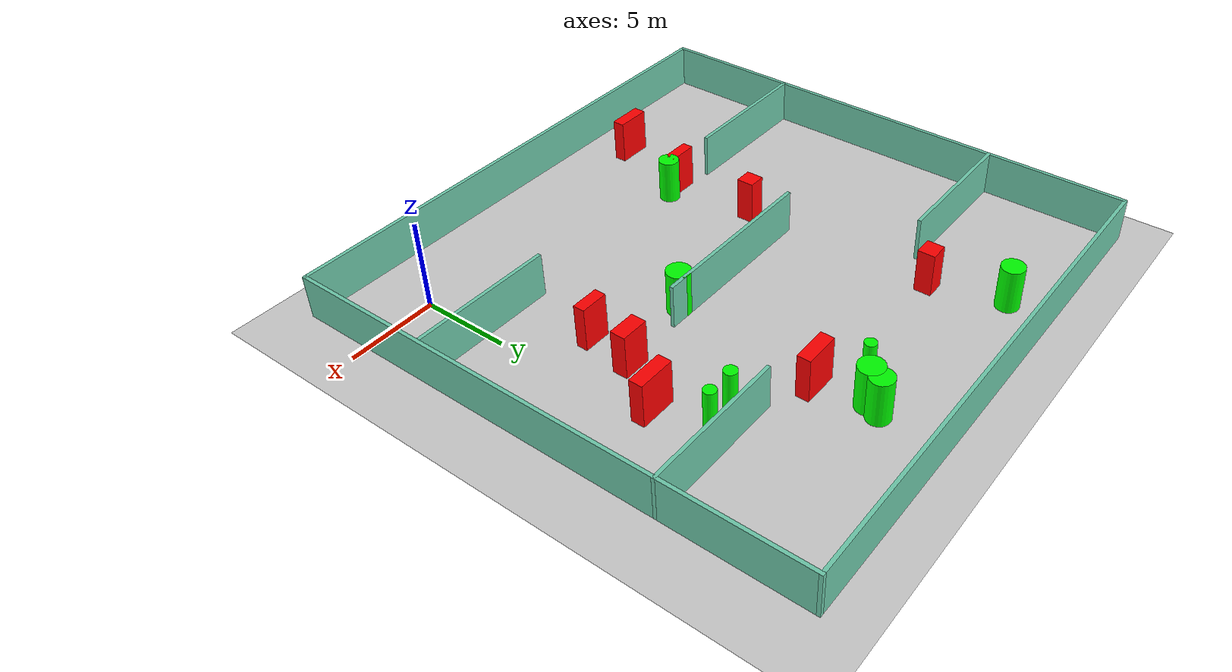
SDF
<sdf version="1.7">
 <world name="default">
  <light name="sun" type="directional">
   <pose>0 0 10 0 -0 0</pose>
   <diffuse>0.8 0.8 0.8 1</diffuse>
   <specular>0.2 0.2 0.2 1</specular>
   <attenuation>
    <range>1000</range>
    <constant>0.9</constant>
    <linear>0.01</linear>
    <quadratic>0.001</quadratic>
   </attenuation>
   <direction>-0.5 0.1 -0.9</direction>
   <spot><inner_angle>0</inner_angle><outer_angle>0</outer_angle><falloff>0</falloff></spot>
  </light>
  <model name="ground_plane">
   <static>1</static>
   <link name="link">
    <collision name="collision">
     <geometry><plane><normal>0 0 1</normal><size>100 100</size></plane></geometry>
     <surface>
      <contact><collide_bitmask>65535</collide_bitmask></contact>
      <friction><ode><mu>100</mu><mu2>50</mu2></ode></friction>
     </surface>
    </collision>
    <visual name="visual">
     <cast_shadows>0</cast_shadows>
     <geometry><plane><normal>0 0 1</normal><size>100 100</size></plane></geometry>
     <material>
      <script><uri>file://media/materials/scripts/gazebo.material</uri><name>Gazebo/Grey</name></script>
     </material>
    </visual>
   </link>
  </model>
  <gravity>0 0 -9.8</gravity>
  <magnetic_field>6e-06 2.3e-05 -4.2e-05</magnetic_field>
  <atmosphere type="adiabatic"/>
  <physics type="ode">
   <max_step_size>0.001</max_step_size>
   <real_time_factor>1</real_time_factor>
   <real_time_update_rate>1000</real_time_update_rate>
  </physics>
  <scene><ambient>0.4 0.4 0.4 1</ambient><background>0.7 0.7 0.7 1</background><shadows>1</shadows></scene>
  <spherical_coordinates>
   <surface_model>EARTH_WGS84</surface_model>
   <latitude_deg>0</latitude_deg>
   <longitude_deg>0</longitude_deg>
   <elevation>0</elevation>
   <heading_deg>0</heading_deg>
  </spherical_coordinates>
  <model name="my_base_walls">
   <link name="Wall_10">
    <collision name="Wall_10_Collision">
     <geometry><box><size>8.2 0.2 2.5</size></box></geometry>
     <pose>0 0 1.25 0 -0 0</pose>
    </collision>
    <visual name="Wall_10_Visual">
     <pose>0 0 1.25 0 -0 0</pose>
     <geometry><box><size>8.2 0.2 2.5</size></box></geometry>
     <material>
      <script><uri>file://media/materials/scripts/gazebo.material</uri><name>Gazebo/Grey</name></script>
      <ambient>0.435294 0.796078 0.67451 1</ambient>
     </material>
     <meta><layer>0</layer></meta>
    </visual>
    <pose>-11 -7 0 0 -0 0</pose>
   </link>
   <link name="Wall_12">
    <collision name="Wall_12_Collision">
     <geometry><box><size>8.2 0.2 2.5</size></box></geometry>
     <pose>0 0 1.25 0 -0 0</pose>
    </collision>
    <visual name="Wall_12_Visual">
     <pose>0 0 1.25 0 -0 0</pose>
     <geometry><box><size>8.2 0.2 2.5</size></box></geometry>
     <material>
      <script><uri>file://media/materials/scripts/gazebo.material</uri><name>Gazebo/Grey</name></script>
      <ambient>0.435294 0.796078 0.67451 1</ambient>
     </material>
     <meta><layer>0</layer></meta>
    </visual>
    <pose>-11 7 0 0 -0 0</pose>
   </link>
   <link name="Wall_14">
    <collision name="Wall_14_Collision">
     <geometry><box><size>8.2 0.2 2.5</size></box></geometry>
     <pose>0 0 1.25 0 -0 0</pose>
    </collision>
    <visual name="Wall_14_Visual">
     <pose>0 0 1.25 0 -0 0</pose>
     <geometry><box><size>8.2 0.2 2.5</size></box></geometry>
     <material>
      <script><uri>file://media/materials/scripts/gazebo.material</uri><name>Gazebo/Grey</name></script>
      <ambient>0.435294 0.796078 0.67451 1</ambient>
     </material>
     <meta><layer>0</layer></meta>
    </visual>
    <pose>11 7 0 0 -0 3.14159</pose>
   </link>
   <link name="Wall_16">
    <collision name="Wall_16_Collision">
     <geometry><box><size>10.2 0.2 2.5</size></box></geometry>
     <pose>0 0 1.25 0 -0 0</pose>
    </collision>
    <visual name="Wall_16_Visual">
     <pose>0 0 1.25 0 -0 0</pose>
     <geometry><box><size>10.2 0.2 2.5</size></box></geometry>
     <material>
      <script><uri>file://media/materials/scripts/gazebo.material</uri><name>Gazebo/Grey</name></script>
      <ambient>0.435294 0.796078 0.67451 1</ambient>
     </material>
     <meta><layer>0</layer></meta>
    </visual>
    <pose>0 0 0 0 -0 3.14159</pose>
   </link>
   <link name="Wall_2">
    <collision name="Wall_2_Collision">
     <geometry><box><size>30.2 0.2 2.5</size></box></geometry>
     <pose>0 0 1.25 0 -0 0</pose>
    </collision>
    <visual name="Wall_2_Visual">
     <pose>0 0 1.25 0 -0 0</pose>
     <geometry><box><size>30.2 0.2 2.5</size></box></geometry>
     <material>
      <script><uri>file://media/materials/scripts/gazebo.material</uri><name>Gazebo/Grey</name></script>
      <ambient>0.435294 0.796078 0.67451 1</ambient>
     </material>
     <meta><layer>0</layer></meta>
    </visual>
    <pose>0 -15 0 0 -0 3.14159</pose>
   </link>
   <link name="Wall_3">
    <collision name="Wall_3_Collision">
     <geometry><box><size>30.2 0.2 2.5</size></box></geometry>
     <pose>0 0 1.25 0 -0 0</pose>
    </collision>
    <visual name="Wall_3_Visual">
     <pose>0 0 1.25 0 -0 0</pose>
     <geometry><box><size>30.2 0.2 2.5</size></box></geometry>
     <material>
      <script><uri>file://media/materials/scripts/gazebo.material</uri><name>Gazebo/Grey</name></script>
      <ambient>0.435294 0.796078 0.67451 1</ambient>
     </material>
     <meta><layer>0</layer></meta>
    </visual>
    <pose>-15 0 0 0 -0 1.5708</pose>
   </link>
   <link name="Wall_4">
    <collision name="Wall_4_Collision">
     <geometry><box><size>30.2 0.2 2.5</size></box></geometry>
     <pose>0 0 1.25 0 -0 0</pose>
    </collision>
    <visual name="Wall_4_Visual">
     <pose>0 0 1.25 0 -0 0</pose>
     <geometry><box><size>30.2 0.2 2.5</size></box></geometry>
     <material>
      <script><uri>file://media/materials/scripts/gazebo.material</uri><name>Gazebo/Grey</name></script>
      <ambient>0.435294 0.796078 0.67451 1</ambient>
     </material>
     <meta><layer>0</layer></meta>
    </visual>
    <pose>0 15 0 0 -0 0</pose>
   </link>
   <link name="Wall_6">
    <collision name="Wall_6_Collision">
     <geometry><box><size>30.2 0.2 2.5</size></box></geometry>
     <pose>0 0 1.25 0 -0 0</pose>
    </collision>
    <visual name="Wall_6_Visual">
     <pose>0 0 1.25 0 -0 0</pose>
     <geometry><box><size>30.2 0.2 2.5</size></box></geometry>
     <material>
      <script><uri>file://media/materials/scripts/gazebo.material</uri><name>Gazebo/Grey</name></script>
      <ambient>0.435294 0.796078 0.67451 1</ambient>
     </material>
     <meta><layer>0</layer></meta>
    </visual>
    <pose>15 0 0 0 -0 1.5708</pose>
   </link>
   <link name="Wall_8">
    <collision name="Wall_8_Collision">
     <geometry><box><size>8.2 0.2 2.5</size></box></geometry>
     <pose>0 0 1.25 0 -0 0</pose>
    </collision>
    <visual name="Wall_8_Visual">
     <pose>0 0 1.25 0 -0 0</pose>
     <geometry><box><size>8.2 0.2 2.5</size></box></geometry>
     <material>
      <script><uri>file://media/materials/scripts/gazebo.material</uri><name>Gazebo/Grey</name></script>
      <ambient>0.435294 0.796078 0.67451 1</ambient>
     </material>
     <meta><layer>0</layer></meta>
    </visual>
    <pose>11 -7 0 0 -0 3.14159</pose>
   </link>
   <static>1</static>
   <pose>-11 11 0 0 -0 0</pose>
  </model>
  <model name="cylinder1">
   <static>1</static>
   <link name="link">
    <inertial>
     <mass>1</mass>
     <inertia><ixx>0.5</ixx><ixy>0</ixy><ixz>0</ixz><iyy>0.5</iyy><iyz>0</iyz><izz>1</izz></inertia>
    </inertial>
    <collision name="collision">
     <geometry><cylinder><radius>0.572245756464271</radius><length>2.5</length></cylinder></geometry>
    </collision>
    <visual name="visual">
     <geometry><cylinder><radius>0.572245756464271</radius><length>2.5</length></cylinder></geometry>
     <material>
      <ambient>0 1 0 1</ambient>
      <diffuse>0 1 0 1</diffuse>
      <specular>0.1 0.1 0.1 1</specular>
      <emissive>0 0 0 0</emissive>
     </material>
    </visual>
   </link>
   <pose>-14.820326193627764 3.7253494716796034 1.25 0 0 0</pose>
  </model>
  <model name="cylinder2">
   <static>1</static>
   <link name="link">
    <inertial>
     <mass>1</mass>
     <inertia><ixx>0.5</ixx><ixy>0</ixy><ixz>0</ixz><iyy>0.5</iyy><iyz>0</iyz><izz>1</izz></inertia>
    </inertial>
    <collision name="collision">
     <geometry><cylinder><radius>0.3275924450058407</radius><length>2.5</length></cylinder></geometry>
    </collision>
    <visual name="visual">
     <geometry><cylinder><radius>0.3275924450058407</radius><length>2.5</length></cylinder></geometry>
     <material>
      <ambient>0 1 0 1</ambient>
      <diffuse>0 1 0 1</diffuse>
      <specular>0.1 0.1 0.1 1</specular>
      <emissive>0 0 0 0</emissive>
     </material>
    </visual>
   </link>
   <pose>-8.139147121121997 20.858082228777963 1.25 0 0 0</pose>
  </model>
  <model name="cylinder3">
   <static>1</static>
   <link name="link">
    <inertial>
     <mass>1</mass>
     <inertia><ixx>0.5</ixx><ixy>0</ixy><ixz>0</ixz><iyy>0.5</iyy><iyz>0</iyz><izz>1</izz></inertia>
    </inertial>
    <collision name="collision">
     <geometry><cylinder><radius>0.6709329368197587</radius><length>2.5</length></cylinder></geometry>
    </collision>
    <visual name="visual">
     <geometry><cylinder><radius>0.6709329368197587</radius><length>2.5</length></cylinder></geometry>
     <material>
      <ambient>0 1 0 1</ambient>
      <diffuse>0 1 0 1</diffuse>
      <specular>0.1 0.1 0.1 1</specular>
      <emissive>0 0 0 0</emissive>
     </material>
    </visual>
   </link>
   <pose>-7.167386102880375 10.453329546698832 1.25 0 0 0</pose>
  </model>
  <model name="cylinder4">
   <static>1</static>
   <link name="link">
    <inertial>
     <mass>1</mass>
     <inertia><ixx>0.5</ixx><ixy>0</ixy><ixz>0</ixz><iyy>0.5</iyy><iyz>0</iyz><izz>1</izz></inertia>
    </inertial>
    <collision name="collision">
     <geometry><cylinder><radius>0.3602662260330396</radius><length>2.5</length></cylinder></geometry>
    </collision>
    <visual name="visual">
     <geometry><cylinder><radius>0.3602662260330396</radius><length>2.5</length></cylinder></geometry>
     <material>
      <ambient>0 1 0 1</ambient>
      <diffuse>0 1 0 1</diffuse>
      <specular>0.1 0.1 0.1 1</specular>
      <emissive>0 0 0 0</emissive>
     </material>
    </visual>
   </link>
   <pose>-2.860470711356154 16.783323740236266 1.25 0 0 0</pose>
  </model>
  <model name="cylinder5">
   <static>1</static>
   <link name="link">
    <inertial>
     <mass>1</mass>
     <inertia><ixx>0.5</ixx><ixy>0</ixy><ixz>0</ixz><iyy>0.5</iyy><iyz>0</iyz><izz>1</izz></inertia>
    </inertial>
    <collision name="collision">
     <geometry><cylinder><radius>0.3421426172799665</radius><length>2.5</length></cylinder></geometry>
    </collision>
    <visual name="visual">
     <geometry><cylinder><radius>0.3421426172799665</radius><length>2.5</length></cylinder></geometry>
     <material>
      <ambient>0 1 0 1</ambient>
      <diffuse>0 1 0 1</diffuse>
      <specular>0.1 0.1 0.1 1</specular>
      <emissive>0 0 0 0</emissive>
     </material>
    </visual>
   </link>
   <pose>-1.3235489837467398 16.784573468025872 1.25 0 0 0</pose>
  </model>
  <model name="cylinder6">
   <static>1</static>
   <link name="link">
    <inertial>
     <mass>1</mass>
     <inertia><ixx>0.5</ixx><ixy>0</ixy><ixz>0</ixz><iyy>0.5</iyy><iyz>0</iyz><izz>1</izz></inertia>
    </inertial>
    <collision name="collision">
     <geometry><cylinder><radius>0.6956556419091314</radius><length>2.5</length></cylinder></geometry>
    </collision>
    <visual name="visual">
     <geometry><cylinder><radius>0.6956556419091314</radius><length>2.5</length></cylinder></geometry>
     <material>
      <ambient>0 1 0 1</ambient>
      <diffuse>0 1 0 1</diffuse>
      <specular>0.1 0.1 0.1 1</specular>
      <emissive>0 0 0 0</emissive>
     </material>
    </visual>
   </link>
   <pose>-6.8120399333640265 21.690693669800904 1.25 0 0 0</pose>
  </model>
  <model name="cylinder7">
   <static>1</static>
   <link name="link">
    <inertial>
     <mass>1</mass>
     <inertia><ixx>0.5</ixx><ixy>0</ixy><ixz>0</ixz><iyy>0.5</iyy><iyz>0</iyz><izz>1</izz></inertia>
    </inertial>
    <collision name="collision">
     <geometry><cylinder><radius>0.647432380357134</radius><length>2.5</length></cylinder></geometry>
    </collision>
    <visual name="visual">
     <geometry><cylinder><radius>0.647432380357134</radius><length>2.5</length></cylinder></geometry>
     <material>
      <ambient>0 1 0 1</ambient>
      <diffuse>0 1 0 1</diffuse>
      <specular>0.1 0.1 0.1 1</specular>
      <emissive>0 0 0 0</emissive>
     </material>
    </visual>
   </link>
   <pose>-6.455834127158859 22.431451433373134 1.25 0 0 0</pose>
  </model>
  <model name="cylinder8">
   <static>1</static>
   <link name="link">
    <inertial>
     <mass>1</mass>
     <inertia><ixx>0.5</ixx><ixy>0</ixy><ixz>0</ixz><iyy>0.5</iyy><iyz>0</iyz><izz>1</izz></inertia>
    </inertial>
    <collision name="collision">
     <geometry><cylinder><radius>0.6486105242477836</radius><length>2.5</length></cylinder></geometry>
    </collision>
    <visual name="visual">
     <geometry><cylinder><radius>0.6486105242477836</radius><length>2.5</length></cylinder></geometry>
     <material>
      <ambient>0 1 0 1</ambient>
      <diffuse>0 1 0 1</diffuse>
      <specular>0.1 0.1 0.1 1</specular>
      <emissive>0 0 0 0</emissive>
     </material>
    </visual>
   </link>
   <pose>-17.196831968935967 23.667107519821833 1.25 0 0 0</pose>
  </model>
  <model name="box1">
   <static>1</static>
   <link name="link">
    <inertial>
     <mass>1</mass>
     <inertia><ixx>0.083</ixx><ixy>0</ixy><ixz>0</ixz><iyy>0.083</iyy><iyz>0</iyz><izz>0.083</izz></inertia>
    </inertial>
    <collision name="collision">
     <geometry><box><size>2.087816364375322 0.7675587883541577 2.5</size></box></geometry>
    </collision>
    <visual name="visual">
     <geometry><box><size>2.087816364375322 0.7675587883541577 2.5</size></box></geometry>
     <material>
      <ambient>1 0 0 1</ambient>
      <diffuse>1 0 0 1</diffuse>
      <specular>0.1 0.1 0.1 1</specular>
      <emissive>0 0 0 0</emissive>
     </material>
    </visual>
    <sensor name="my_contact" type="contact">
     <contact><collision>box_collision</collision><topic>__default_topic__</topic></contact>
    </sensor>
   </link>
   <pose>-0.7377710184499371 13.917826098813627 1.25 0 0 0</pose>
  </model>
  <model name="box2">
   <static>1</static>
   <link name="link">
    <inertial>
     <mass>1</mass>
     <inertia><ixx>0.083</ixx><ixy>0</ixy><ixz>0</ixz><iyy>0.083</iyy><iyz>0</iyz><izz>0.083</izz></inertia>
    </inertial>
    <collision name="collision">
     <geometry><box><size>1.5614169177958206 0.8607757696742884 2.5</size></box></geometry>
    </collision>
    <visual name="visual">
     <geometry><box><size>1.5614169177958206 0.8607757696742884 2.5</size></box></geometry>
     <material>
      <ambient>1 0 0 1</ambient>
      <diffuse>1 0 0 1</diffuse>
      <specular>0.1 0.1 0.1 1</specular>
      <emissive>0 0 0 0</emissive>
     </material>
    </visual>
    <sensor name="my_contact" type="contact">
     <contact><collision>box_collision</collision><topic>__default_topic__</topic></contact>
    </sensor>
   </link>
   <pose>-2.4567628689864165 11.181339803098506 1.25 0 0 0</pose>
  </model>
  <model name="box3">
   <static>1</static>
   <link name="link">
    <inertial>
     <mass>1</mass>
     <inertia><ixx>0.083</ixx><ixy>0</ixy><ixz>0</ixz><iyy>0.083</iyy><iyz>0</iyz><izz>0.083</izz></inertia>
    </inertial>
    <collision name="collision">
     <geometry><box><size>1.5622030706995325 0.6428369707970627 2.5</size></box></geometry>
    </collision>
    <visual name="visual">
     <geometry><box><size>1.5622030706995325 0.6428369707970627 2.5</size></box></geometry>
     <material>
      <ambient>1 0 0 1</ambient>
      <diffuse>1 0 0 1</diffuse>
      <specular>0.1 0.1 0.1 1</specular>
      <emissive>0 0 0 0</emissive>
     </material>
    </visual>
    <sensor name="my_contact" type="contact">
     <contact><collision>box_collision</collision><topic>__default_topic__</topic></contact>
    </sensor>
   </link>
   <pose>-2.8353141677204015 8.450866260563076 1.25 0 0 0</pose>
  </model>
  <model name="box4">
   <static>1</static>
   <link name="link">
    <inertial>
     <mass>1</mass>
     <inertia><ixx>0.083</ixx><ixy>0</ixy><ixz>0</ixz><iyy>0.083</iyy><iyz>0</iyz><izz>0.083</izz></inertia>
    </inertial>
    <collision name="collision">
     <geometry><box><size>1.711927467265803 0.6139009560393842 2.5</size></box></geometry>
    </collision>
    <visual name="visual">
     <geometry><box><size>1.711927467265803 0.6139009560393842 2.5</size></box></geometry>
     <material>
      <ambient>1 0 0 1</ambient>
      <diffuse>1 0 0 1</diffuse>
      <specular>0.1 0.1 0.1 1</specular>
      <emissive>0 0 0 0</emissive>
     </material>
    </visual>
    <sensor name="my_contact" type="contact">
     <contact><collision>box_collision</collision><topic>__default_topic__</topic></contact>
    </sensor>
   </link>
   <pose>-15.825948578826612 3.6377217204952466 1.25 0 0 0</pose>
  </model>
  <model name="box5">
   <static>1</static>
   <link name="link">
    <inertial>
     <mass>1</mass>
     <inertia><ixx>0.083</ixx><ixy>0</ixy><ixz>0</ixz><iyy>0.083</iyy><iyz>0</iyz><izz>0.083</izz></inertia>
    </inertial>
    <collision name="collision">
     <geometry><box><size>0.963762535776491 0.9693660502830916 2.5</size></box></geometry>
    </collision>
    <visual name="visual">
     <geometry><box><size>0.963762535776491 0.9693660502830916 2.5</size></box></geometry>
     <material>
      <ambient>1 0 0 1</ambient>
      <diffuse>1 0 0 1</diffuse>
      <specular>0.1 0.1 0.1 1</specular>
      <emissive>0 0 0 0</emissive>
     </material>
    </visual>
    <sensor name="my_contact" type="contact">
     <contact><collision>box_collision</collision><topic>__default_topic__</topic></contact>
    </sensor>
   </link>
   <pose>-15.940729614256771 8.54113367982348 1.25 0 0 0</pose>
  </model>
  <model name="box6">
   <static>1</static>
   <link name="link">
    <inertial>
     <mass>1</mass>
     <inertia><ixx>0.083</ixx><ixy>0</ixy><ixz>0</ixz><iyy>0.083</iyy><iyz>0</iyz><izz>0.083</izz></inertia>
    </inertial>
    <collision name="collision">
     <geometry><box><size>1.9746256933543522 0.6853337030399871 2.5</size></box></geometry>
    </collision>
    <visual name="visual">
     <geometry><box><size>1.9746256933543522 0.6853337030399871 2.5</size></box></geometry>
     <material>
      <ambient>1 0 0 1</ambient>
      <diffuse>1 0 0 1</diffuse>
      <specular>0.1 0.1 0.1 1</specular>
      <emissive>0 0 0 0</emissive>
     </material>
    </visual>
    <sensor name="my_contact" type="contact">
     <contact><collision>box_collision</collision><topic>__default_topic__</topic></contact>
    </sensor>
   </link>
   <pose>-17.156307734964635 -1.1605959109155797 1.25 0 0 0</pose>
  </model>
  <model name="box7">
   <static>1</static>
   <link name="link">
    <inertial>
     <mass>1</mass>
     <inertia><ixx>0.083</ixx><ixy>0</ixy><ixz>0</ixz><iyy>0.083</iyy><iyz>0</iyz><izz>0.083</izz></inertia>
    </inertial>
    <collision name="collision">
     <geometry><box><size>1.052353229037701 0.9651788259152395 2.5</size></box></geometry>
    </collision>
    <visual name="visual">
     <geometry><box><size>1.052353229037701 0.9651788259152395 2.5</size></box></geometry>
     <material>
      <ambient>1 0 0 1</ambient>
      <diffuse>1 0 0 1</diffuse>
      <specular>0.1 0.1 0.1 1</specular>
      <emissive>0 0 0 0</emissive>
     </material>
    </visual>
    <sensor name="my_contact" type="contact">
     <contact><collision>box_collision</collision><topic>__default_topic__</topic></contact>
    </sensor>
   </link>
   <pose>-16.081973341169178 19.68274551821475 1.25 0 0 0</pose>
  </model>
  <model name="box8">
   <static>1</static>
   <link name="link">
    <inertial>
     <mass>1</mass>
     <inertia><ixx>0.083</ixx><ixy>0</ixy><ixz>0</ixz><iyy>0.083</iyy><iyz>0</iyz><izz>0.083</izz></inertia>
    </inertial>
    <collision name="collision">
     <geometry><box><size>2.0217422345144196 0.7562250354482908 2.5</size></box></geometry>
    </collision>
    <visual name="visual">
     <geometry><box><size>2.0217422345144196 0.7562250354482908 2.5</size></box></geometry>
     <material>
      <ambient>1 0 0 1</ambient>
      <diffuse>1 0 0 1</diffuse>
      <specular>0.1 0.1 0.1 1</specular>
      <emissive>0 0 0 0</emissive>
     </material>
    </visual>
    <sensor name="my_contact" type="contact">
     <contact><collision>box_collision</collision><topic>__default_topic__</topic></contact>
    </sensor>
   </link>
   <pose>-6.402635785070721 18.99792531562193 1.25 0 0 0</pose>
  </model>
 </world>
</sdf>
